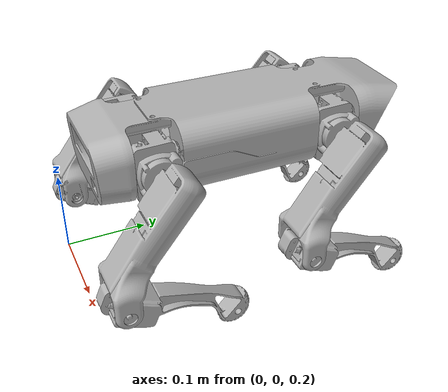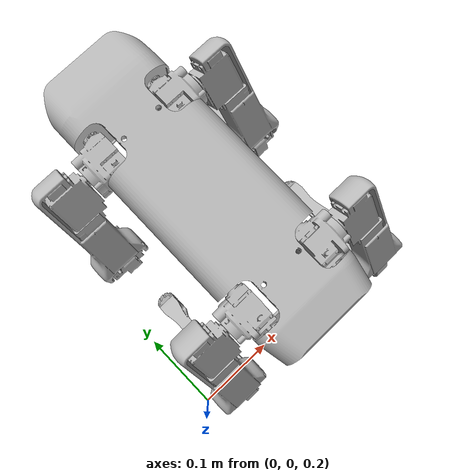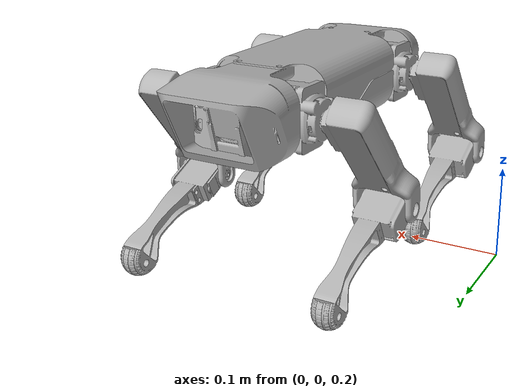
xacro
<?xml version="1.0" ?>
<robot name="Assembly_For_Simulation" xmlns:xacro="http://www.ros.org/wiki/xacro">

<xacro:include filename="$(find Assembly_For_Simulation_description)/urdf/materials.xacro" />
<xacro:include filename="$(find Assembly_For_Simulation_description)/urdf/Assembly_For_Simulation.trans" />
<xacro:include filename="$(find Assembly_For_Simulation_description)/urdf/Assembly_For_Simulation.gazebo" />
<link name="base_link">
  <inertial>
    <origin xyz="0.1512593342219887 0.16030316794053984 0.412376843524648" rpy="0 0 0"/>
    <mass value="3.191391801481597"/>
    <inertia ixx="0.027222" iyy="0.005387" izz="0.02879" ixy="-6e-06" iyz="-0.000199" ixz="-1e-06"/>
  </inertial>
  <visual>
    <origin xyz="0 0 0" rpy="0 0 0"/>
    <geometry>
      <mesh filename="package://Assembly_For_Simulation_description/meshes/base_link.stl" scale="0.001 0.001 0.001"/>
    </geometry>
    <material name="silver"/>
  </visual>
  <collision>
    <origin xyz="0 0 0" rpy="0 0 0"/>
    <geometry>
      <mesh filename="package://Assembly_For_Simulation_description/meshes/base_link.stl" scale="0.001 0.001 0.001"/>
    </geometry>
  </collision>
</link>

<link name="Back_left_forearm_1">
  <inertial>
    <origin xyz="-0.02387677244019979 0.02681764636693125 -0.014730802536600973" rpy="0 0 0"/>
    <mass value="0.49369135494533783"/>
    <inertia ixx="0.00102" iyy="0.000227" izz="0.000889" ixy="-1e-05" iyz="0.000349" ixz="2e-06"/>
  </inertial>
  <visual>
    <origin xyz="-0.074761 -0.011235 -0.317307" rpy="0 0 0"/>
    <geometry>
      <mesh filename="package://Assembly_For_Simulation_description/meshes/Back_left_forearm_1.stl" scale="0.001 0.001 0.001"/>
    </geometry>
    <material name="silver"/>
  </visual>
  <collision>
    <origin xyz="-0.074761 -0.011235 -0.317307" rpy="0 0 0"/>
    <geometry>
      <mesh filename="package://Assembly_For_Simulation_description/meshes/Back_left_forearm_1.stl" scale="0.001 0.001 0.001"/>
    </geometry>
  </collision>
</link>

<link name="Back_right_forearm_1">
  <inertial>
    <origin xyz="0.027613181105729107 0.027492504385563943 -0.014145746962176853" rpy="0 0 0"/>
    <mass value="0.4997350884581435"/>
    <inertia ixx="0.00102" iyy="0.000222" izz="0.000896" ixy="9e-06" iyz="0.000342" ixz="-0.0"/>
  </inertial>
  <visual>
    <origin xyz="-0.220832 -0.007695 -0.315254" rpy="0 0 0"/>
    <geometry>
      <mesh filename="package://Assembly_For_Simulation_description/meshes/Back_right_forearm_1.stl" scale="0.001 0.001 0.001"/>
    </geometry>
    <material name="silver"/>
  </visual>
  <collision>
    <origin xyz="-0.220832 -0.007695 -0.315254" rpy="0 0 0"/>
    <geometry>
      <mesh filename="package://Assembly_For_Simulation_description/meshes/Back_right_forearm_1.stl" scale="0.001 0.001 0.001"/>
    </geometry>
  </collision>
</link>

<link name="Front_right_forearm_1">
  <inertial>
    <origin xyz="0.028280901609207154 0.03063734624089054 -0.014033926018012455" rpy="0 0 0"/>
    <mass value="0.49985914540184717"/>
    <inertia ixx="0.001017" iyy="0.00022" izz="0.000895" ixy="9e-06" iyz="0.000339" ixz="-0.0"/>
  </inertial>
  <visual>
    <origin xyz="-0.219953 -0.188311 -0.315701" rpy="0 0 0"/>
    <geometry>
      <mesh filename="package://Assembly_For_Simulation_description/meshes/Front_right_forearm_1.stl" scale="0.001 0.001 0.001"/>
    </geometry>
    <material name="silver"/>
  </visual>
  <collision>
    <origin xyz="-0.219953 -0.188311 -0.315701" rpy="0 0 0"/>
    <geometry>
      <mesh filename="package://Assembly_For_Simulation_description/meshes/Front_right_forearm_1.stl" scale="0.001 0.001 0.001"/>
    </geometry>
  </collision>
</link>

<link name="Front_left_forearm_1">
  <inertial>
    <origin xyz="-0.027057224103647512 0.03285362638972403 -0.0179332893641046" rpy="0 0 0"/>
    <mass value="0.4907857835923385"/>
    <inertia ixx="0.001019" iyy="0.00025" izz="0.000864" ixy="-1e-05" iyz="0.00037" ixz="2e-06"/>
  </inertial>
  <visual>
    <origin xyz="-0.0789 -0.186175 -0.321641" rpy="0 0 0"/>
    <geometry>
      <mesh filename="package://Assembly_For_Simulation_description/meshes/Front_left_forearm_1.stl" scale="0.001 0.001 0.001"/>
    </geometry>
    <material name="silver"/>
  </visual>
  <collision>
    <origin xyz="-0.0789 -0.186175 -0.321641" rpy="0 0 0"/>
    <geometry>
      <mesh filename="package://Assembly_For_Simulation_description/meshes/Front_left_forearm_1.stl" scale="0.001 0.001 0.001"/>
    </geometry>
  </collision>
</link>

<link name="Front_left_upperarm_1">
  <inertial>
    <origin xyz="-0.028284917610378983 -0.02108532889406975 -0.028288575949279582" rpy="0 0 0"/>
    <mass value="0.8744793376361596"/>
    <inertia ixx="0.001088" iyy="0.000763" izz="0.000625" ixy="-3.6e-05" iyz="-0.000486" ixz="-4.4e-05"/>
  </inertial>
  <visual>
    <origin xyz="-0.083187 -0.243985 -0.4074" rpy="0 0 0"/>
    <geometry>
      <mesh filename="package://Assembly_For_Simulation_description/meshes/Front_left_upperarm_1.stl" scale="0.001 0.001 0.001"/>
    </geometry>
    <material name="silver"/>
  </visual>
  <collision>
    <origin xyz="-0.083187 -0.243985 -0.4074" rpy="0 0 0"/>
    <geometry>
      <mesh filename="package://Assembly_For_Simulation_description/meshes/Front_left_upperarm_1.stl" scale="0.001 0.001 0.001"/>
    </geometry>
  </collision>
</link>

<link name="Back_left_upperarm_1">
  <inertial>
    <origin xyz="-0.02750689648118338 -0.02336284804613996 -0.029081384030744284" rpy="0 0 0"/>
    <mass value="0.8748318275164033"/>
    <inertia ixx="0.001089" iyy="0.000797" izz="0.000592" ixy="-3.4e-05" iyz="-0.000481" ixz="-4.5e-05"/>
  </inertial>
  <visual>
    <origin xyz="-0.081839 -0.062996 -0.407244" rpy="0 0 0"/>
    <geometry>
      <mesh filename="package://Assembly_For_Simulation_description/meshes/Back_left_upperarm_1.stl" scale="0.001 0.001 0.001"/>
    </geometry>
    <material name="silver"/>
  </visual>
  <collision>
    <origin xyz="-0.081839 -0.062996 -0.407244" rpy="0 0 0"/>
    <geometry>
      <mesh filename="package://Assembly_For_Simulation_description/meshes/Back_left_upperarm_1.stl" scale="0.001 0.001 0.001"/>
    </geometry>
  </collision>
</link>

<link name="Back_right_upperarm_1">
  <inertial>
    <origin xyz="0.027209865141448047 -0.023311952469138093 -0.030109181264053264" rpy="0 0 0"/>
    <mass value="0.8799159312518796"/>
    <inertia ixx="0.001109" iyy="0.000826" izz="0.000582" ixy="3.4e-05" iyz="-0.000487" ixz="4.6e-05"/>
  </inertial>
  <visual>
    <origin xyz="-0.218394 -0.059885 -0.40762" rpy="0 0 0"/>
    <geometry>
      <mesh filename="package://Assembly_For_Simulation_description/meshes/Back_right_upperarm_1.stl" scale="0.001 0.001 0.001"/>
    </geometry>
    <material name="silver"/>
  </visual>
  <collision>
    <origin xyz="-0.218394 -0.059885 -0.40762" rpy="0 0 0"/>
    <geometry>
      <mesh filename="package://Assembly_For_Simulation_description/meshes/Back_right_upperarm_1.stl" scale="0.001 0.001 0.001"/>
    </geometry>
  </collision>
</link>

<link name="Front_right_upperarm_1">
  <inertial>
    <origin xyz="0.02807800917517464 -0.020330509261276747 -0.03000008718595981" rpy="0 0 0"/>
    <mass value="0.8783362542022034"/>
    <inertia ixx="0.001108" iyy="0.000823" izz="0.000584" ixy="3.4e-05" iyz="-0.000487" ixz="4.6e-05"/>
  </inertial>
  <visual>
    <origin xyz="-0.217091 -0.240808 -0.407776" rpy="0 0 0"/>
    <geometry>
      <mesh filename="package://Assembly_For_Simulation_description/meshes/Front_right_upperarm_1.stl" scale="0.001 0.001 0.001"/>
    </geometry>
    <material name="silver"/>
  </visual>
  <collision>
    <origin xyz="-0.217091 -0.240808 -0.407776" rpy="0 0 0"/>
    <geometry>
      <mesh filename="package://Assembly_For_Simulation_description/meshes/Front_right_upperarm_1.stl" scale="0.001 0.001 0.001"/>
    </geometry>
  </collision>
</link>

<link name="Front_left_shoulder_1">
  <inertial>
    <origin xyz="-0.005339527921810666 -0.025320596641202398 -0.010184059798263811" rpy="0 0 0"/>
    <mass value="0.4319490482609508"/>
    <inertia ixx="0.000147" iyy="0.000126" izz="0.000101" ixy="-2e-06" iyz="0.0" ixz="-1e-06"/>
  </inertial>
  <visual>
    <origin xyz="-0.111229 -0.269558 -0.418845" rpy="0 0 0"/>
    <geometry>
      <mesh filename="package://Assembly_For_Simulation_description/meshes/Front_left_shoulder_1.stl" scale="0.001 0.001 0.001"/>
    </geometry>
    <material name="silver"/>
  </visual>
  <collision>
    <origin xyz="-0.111229 -0.269558 -0.418845" rpy="0 0 0"/>
    <geometry>
      <mesh filename="package://Assembly_For_Simulation_description/meshes/Front_left_shoulder_1.stl" scale="0.001 0.001 0.001"/>
    </geometry>
  </collision>
</link>

<link name="Back_left_shoulder_1">
  <inertial>
    <origin xyz="-0.005363913174555646 -0.023387748969751543 -0.010220793704320386" rpy="0 0 0"/>
    <mass value="0.4303475504541287"/>
    <inertia ixx="0.000146" iyy="0.000126" izz="0.0001" ixy="-2e-06" iyz="0.0" ixz="-1e-06"/>
  </inertial>
  <visual>
    <origin xyz="-0.110566 -0.083213 -0.418845" rpy="0 0 0"/>
    <geometry>
      <mesh filename="package://Assembly_For_Simulation_description/meshes/Back_left_shoulder_1.stl" scale="0.001 0.001 0.001"/>
    </geometry>
    <material name="silver"/>
  </visual>
  <collision>
    <origin xyz="-0.110566 -0.083213 -0.418845" rpy="0 0 0"/>
    <geometry>
      <mesh filename="package://Assembly_For_Simulation_description/meshes/Back_left_shoulder_1.stl" scale="0.001 0.001 0.001"/>
    </geometry>
  </collision>
</link>

<link name="Front_right_shoulder_1">
  <inertial>
    <origin xyz="0.006087856285854981 -0.025911628553660748 -0.00998663838863767" rpy="0 0 0"/>
    <mass value="0.4625960736060809"/>
    <inertia ixx="0.000154" iyy="0.000135" izz="0.000109" ixy="3e-06" iyz="0.0" ixz="1e-06"/>
  </inertial>
  <visual>
    <origin xyz="-0.189346 -0.269558 -0.418845" rpy="0 0 0"/>
    <geometry>
      <mesh filename="package://Assembly_For_Simulation_description/meshes/Front_right_shoulder_1.stl" scale="0.001 0.001 0.001"/>
    </geometry>
    <material name="silver"/>
  </visual>
  <collision>
    <origin xyz="-0.189346 -0.269558 -0.418845" rpy="0 0 0"/>
    <geometry>
      <mesh filename="package://Assembly_For_Simulation_description/meshes/Front_right_shoulder_1.stl" scale="0.001 0.001 0.001"/>
    </geometry>
  </collision>
</link>

<link name="Back_right_shoulder_1">
  <inertial>
    <origin xyz="0.006087148320676111 -0.02397456645876838 -0.010035497575170416" rpy="0 0 0"/>
    <mass value="0.4620829118754373"/>
    <inertia ixx="0.000153" iyy="0.000135" izz="0.000109" ixy="2e-06" iyz="0.0" ixz="1e-06"/>
  </inertial>
  <visual>
    <origin xyz="-0.190009 -0.083213 -0.418845" rpy="0 0 0"/>
    <geometry>
      <mesh filename="package://Assembly_For_Simulation_description/meshes/Back_right_shoulder_1.stl" scale="0.001 0.001 0.001"/>
    </geometry>
    <material name="silver"/>
  </visual>
  <collision>
    <origin xyz="-0.190009 -0.083213 -0.418845" rpy="0 0 0"/>
    <geometry>
      <mesh filename="package://Assembly_For_Simulation_description/meshes/Back_right_shoulder_1.stl" scale="0.001 0.001 0.001"/>
    </geometry>
  </collision>
</link>

<joint name="Revolute 24" type="revolute">
  <origin xyz="-0.007078 -0.051761 -0.089937" rpy="0 0 0"/>
  <parent link="Back_left_upperarm_1"/>
  <child link="Back_left_forearm_1"/>
  <axis xyz="1.0 -0.000123 5e-05"/>
  <limit upper="0.785398" lower="-3.141593" effort="100" velocity="100"/>
</joint>

<joint name="Revolute 25" type="revolute">
  <origin xyz="0.002438 -0.05219 -0.092366" rpy="0 0 0"/>
  <parent link="Back_right_upperarm_1"/>
  <child link="Back_right_forearm_1"/>
  <axis xyz="-1.0 6.2e-05 -0.0"/>
  <limit upper="3.141593" lower="-0.785398" effort="100" velocity="100"/>
</joint>

<joint name="Revolute 26" type="revolute">
  <origin xyz="0.002862 -0.052497 -0.092075" rpy="0 0 0"/>
  <parent link="Front_right_upperarm_1"/>
  <child link="Front_right_forearm_1"/>
  <axis xyz="-1.0 6.2e-05 -0.0"/>
  <limit upper="3.141593" lower="-0.785398" effort="100" velocity="100"/>
</joint>

<joint name="Revolute 27" type="revolute">
  <origin xyz="-0.004287 -0.05781 -0.085759" rpy="0 0 0"/>
  <parent link="Front_left_upperarm_1"/>
  <child link="Front_left_forearm_1"/>
  <axis xyz="-1.0 0.000121 -5.2e-05"/>
  <limit upper="3.141593" lower="-0.785398" effort="100" velocity="100"/>
</joint>

<joint name="Revolute 28" type="revolute">
  <origin xyz="-0.028042 -0.025573 -0.011445" rpy="0 0 0"/>
  <parent link="Front_left_shoulder_1"/>
  <child link="Front_left_upperarm_1"/>
  <axis xyz="1.0 -6.2e-05 -0.0"/>
  <limit upper="1.570796" lower="-2.96706" effort="100" velocity="100"/>
</joint>

<joint name="Revolute 29" type="revolute">
  <origin xyz="-0.028727 -0.020217 -0.011601" rpy="0 0 0"/>
  <parent link="Back_left_shoulder_1"/>
  <child link="Back_left_upperarm_1"/>
  <axis xyz="1.0 -6.2e-05 -0.0"/>
  <limit upper="1.570796" lower="-2.96706" effort="100" velocity="100"/>
</joint>

<joint name="Revolute 30" type="revolute">
  <origin xyz="0.028385 -0.023328 -0.011225" rpy="0 0 0"/>
  <parent link="Back_right_shoulder_1"/>
  <child link="Back_right_upperarm_1"/>
  <axis xyz="1.0 -6.2e-05 0.0"/>
  <limit upper="1.570796" lower="-2.96706" effort="100" velocity="100"/>
</joint>

<joint name="Revolute 31" type="revolute">
  <origin xyz="0.027745 -0.02875 -0.011069" rpy="0 0 0"/>
  <parent link="Front_right_shoulder_1"/>
  <child link="Front_right_upperarm_1"/>
  <axis xyz="1.0 -6.2e-05 0.0"/>
  <limit upper="1.570796" lower="-2.96706" effort="100" velocity="100"/>
</joint>

<joint name="Revolute 32" type="revolute">
  <origin xyz="0.111229 0.269558 0.418845" rpy="0 0 0"/>
  <parent link="base_link"/>
  <child link="Front_left_shoulder_1"/>
  <axis xyz="-0.0 1.0 0.0"/>
  <limit upper="1.22173" lower="-1.047198" effort="100" velocity="100"/>
</joint>

<joint name="Revolute 33" type="revolute">
  <origin xyz="0.110566 0.083213 0.418845" rpy="0 0 0"/>
  <parent link="base_link"/>
  <child link="Back_left_shoulder_1"/>
  <axis xyz="0.0 1.0 0.0"/>
  <limit upper="1.22173" lower="-1.047198" effort="100" velocity="100"/>
</joint>

<joint name="Revolute 34" type="revolute">
  <origin xyz="0.189346 0.269558 0.418845" rpy="0 0 0"/>
  <parent link="base_link"/>
  <child link="Front_right_shoulder_1"/>
  <axis xyz="-0.0 1.0 0.0"/>
  <limit upper="1.047198" lower="-1.22173" effort="100" velocity="100"/>
</joint>

<joint name="Revolute 35" type="revolute">
  <origin xyz="0.190009 0.083213 0.418845" rpy="0 0 0"/>
  <parent link="base_link"/>
  <child link="Back_right_shoulder_1"/>
  <axis xyz="0.0 1.0 0.0"/>
  <limit upper="1.047198" lower="-1.22173" effort="100" velocity="100"/>
</joint>

</robot>

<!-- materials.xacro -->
<robot name="Assembly_For_Simulation" xmlns:xacro="http://www.ros.org/wiki/xacro" >

<material name="silver">
  <color rgba="0.700 0.700 0.700 1.000"/>
</material>

</robot>

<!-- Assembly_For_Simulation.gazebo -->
<robot name="Assembly_For_Simulation" xmlns:xacro="http://www.ros.org/wiki/xacro" >

<xacro:property name="body_color" value="Gazebo/Silver" />

<gazebo>
  <plugin name="control" filename="libgazebo_ros_control.so"/>
</gazebo>
<gazebo reference="base_link">
  <material>${body_color}</material>
  <mu1>0.2</mu1>
  <mu2>0.2</mu2>
  <selfCollide>true</selfCollide>
  <gravity>true</gravity>
</gazebo>

<gazebo reference="Back_left_forearm_1">
  <material>${body_color}</material>
  <mu1>0.2</mu1>
  <mu2>0.2</mu2>
  <selfCollide>true</selfCollide>
</gazebo>

<gazebo reference="Back_right_forearm_1">
  <material>${body_color}</material>
  <mu1>0.2</mu1>
  <mu2>0.2</mu2>
  <selfCollide>true</selfCollide>
</gazebo>

<gazebo reference="Front_right_forearm_1">
  <material>${body_color}</material>
  <mu1>0.2</mu1>
  <mu2>0.2</mu2>
  <selfCollide>true</selfCollide>
</gazebo>

<gazebo reference="Front_left_forearm_1">
  <material>${body_color}</material>
  <mu1>0.2</mu1>
  <mu2>0.2</mu2>
  <selfCollide>true</selfCollide>
</gazebo>

<gazebo reference="Front_left_upperarm_1">
  <material>${body_color}</material>
  <mu1>0.2</mu1>
  <mu2>0.2</mu2>
  <selfCollide>true</selfCollide>
</gazebo>

<gazebo reference="Back_left_upperarm_1">
  <material>${body_color}</material>
  <mu1>0.2</mu1>
  <mu2>0.2</mu2>
  <selfCollide>true</selfCollide>
</gazebo>

<gazebo reference="Back_right_upperarm_1">
  <material>${body_color}</material>
  <mu1>0.2</mu1>
  <mu2>0.2</mu2>
  <selfCollide>true</selfCollide>
</gazebo>

<gazebo reference="Front_right_upperarm_1">
  <material>${body_color}</material>
  <mu1>0.2</mu1>
  <mu2>0.2</mu2>
  <selfCollide>true</selfCollide>
</gazebo>

<gazebo reference="Front_left_shoulder_1">
  <material>${body_color}</material>
  <mu1>0.2</mu1>
  <mu2>0.2</mu2>
  <selfCollide>true</selfCollide>
</gazebo>

<gazebo reference="Back_left_shoulder_1">
  <material>${body_color}</material>
  <mu1>0.2</mu1>
  <mu2>0.2</mu2>
  <selfCollide>true</selfCollide>
</gazebo>

<gazebo reference="Front_right_shoulder_1">
  <material>${body_color}</material>
  <mu1>0.2</mu1>
  <mu2>0.2</mu2>
  <selfCollide>true</selfCollide>
</gazebo>

<gazebo reference="Back_right_shoulder_1">
  <material>${body_color}</material>
  <mu1>0.2</mu1>
  <mu2>0.2</mu2>
  <selfCollide>true</selfCollide>
</gazebo>

</robot>
